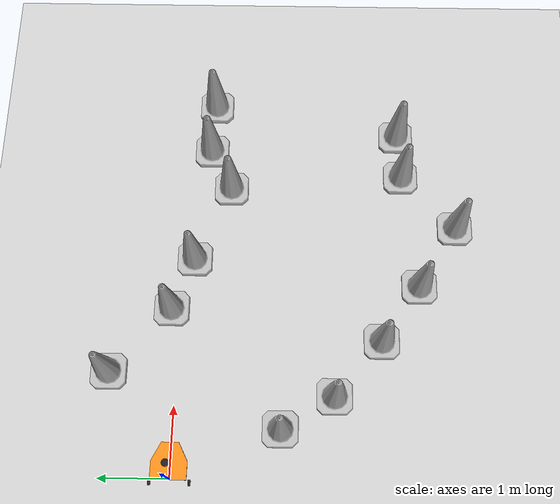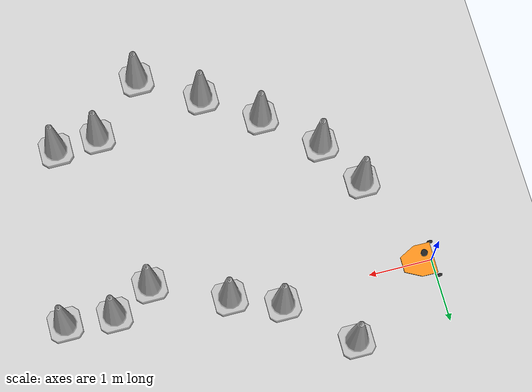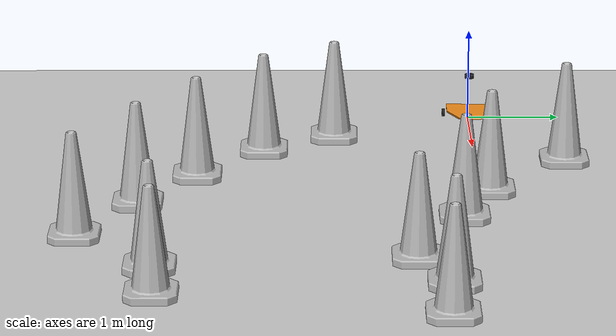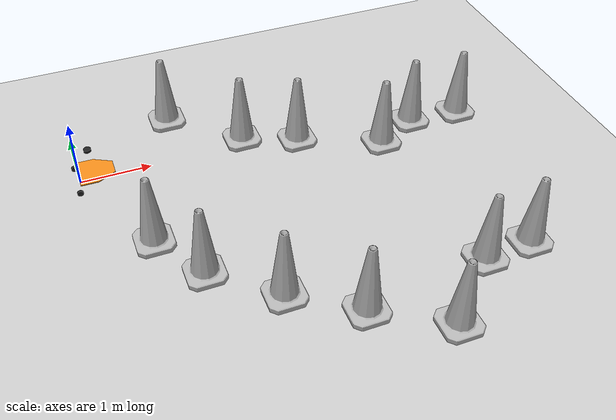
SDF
<sdf version="1.7">
 <world name="default">
  <light name="sun" type="directional">
   <pose>0 0 10 0 -0 0</pose>
   <diffuse>0.8 0.8 0.8 1</diffuse>
   <specular>0.2 0.2 0.2 1</specular>
   <attenuation>
    <range>1000</range>
    <constant>0.9</constant>
    <linear>0.01</linear>
    <quadratic>0.001</quadratic>
   </attenuation>
   <direction>-0.5 0.1 -0.9</direction>
   <spot><inner_angle>0</inner_angle><outer_angle>0</outer_angle><falloff>0</falloff></spot>
  </light>
  <model name="ground_plane">
   <static>1</static>
   <link name="link">
    <collision name="collision">
     <geometry><plane><normal>0 0 1</normal><size>100 100</size></plane></geometry>
     <surface><friction><ode><mu>100</mu><mu2>50</mu2></ode></friction></surface>
    </collision>
    <visual name="visual">
     <cast_shadows>0</cast_shadows>
     <geometry><plane><normal>0 0 1</normal><size>100 100</size></plane></geometry>
     <material>
      <script><uri>file://media/materials/scripts/gazebo.material</uri><name>Gazebo/Grey</name></script>
     </material>
    </visual>
   </link>
  </model>
  <gravity>0 0 -9.8</gravity>
  <magnetic_field>6e-06 2.3e-05 -4.2e-05</magnetic_field>
  <atmosphere type="adiabatic"/>
  <physics type="ode">
   <max_step_size>0.001</max_step_size>
   <real_time_factor>1</real_time_factor>
   <real_time_update_rate>1000</real_time_update_rate>
  </physics>
  <scene><ambient>0.4 0.4 0.4 1</ambient><background>0.7 0.7 0.7 1</background><shadows>1</shadows></scene>
  <audio><device>default</device></audio>
  <spherical_coordinates>
   <surface_model>EARTH_WGS84</surface_model>
   <latitude_deg>0</latitude_deg>
   <longitude_deg>0</longitude_deg>
   <elevation>0</elevation>
   <heading_deg>0</heading_deg>
  </spherical_coordinates>
  <model name="Construction Cone">
   <link name="link">
    <collision name="collision">
     <geometry>
      <mesh><scale>10 10 10</scale><uri>model://construction_cone/meshes/construction_cone.dae</uri></mesh>
     </geometry>
    </collision>
    <visual name="visual">
     <geometry>
      <mesh><scale>10 10 10</scale><uri>model://construction_cone/meshes/construction_cone.dae</uri></mesh>
     </geometry>
    </visual>
    <inertial>
     <inertia><ixx>1</ixx><ixy>0</ixy><ixz>0</ixz><iyy>1</iyy><iyz>0</iyz><izz>1</izz></inertia>
     <mass>1</mass>
    </inertial>
   </link>
   <pose>1.95507 -2.92548 -1e-05 0 -0 0</pose>
  </model>
  <model name="Construction Cone_5">
   <link name="link">
    <collision name="collision">
     <geometry>
      <mesh><scale>10 10 10</scale><uri>model://construction_cone/meshes/construction_cone.dae</uri></mesh>
     </geometry>
    </collision>
    <visual name="visual">
     <geometry>
      <mesh><scale>10 10 10</scale><uri>model://construction_cone/meshes/construction_cone.dae</uri></mesh>
     </geometry>
    </visual>
    <inertial>
     <inertia><ixx>1</ixx><ixy>0</ixy><ixz>0</ixz><iyy>1</iyy><iyz>0</iyz><izz>1</izz></inertia>
     <mass>1</mass>
    </inertial>
   </link>
   <pose>2.78297 -3.49309 -0 0 -0 0</pose>
  </model>
  <model name="Construction Cone_10">
   <link name="link">
    <collision name="collision">
     <geometry>
      <mesh><scale>10 10 10</scale><uri>model://construction_cone/meshes/construction_cone.dae</uri></mesh>
     </geometry>
    </collision>
    <visual name="visual">
     <geometry>
      <mesh><scale>10 10 10</scale><uri>model://construction_cone/meshes/construction_cone.dae</uri></mesh>
     </geometry>
    </visual>
    <inertial>
     <inertia><ixx>1</ixx><ixy>0</ixy><ixz>0</ixz><iyy>1</iyy><iyz>0</iyz><izz>1</izz></inertia>
     <mass>1</mass>
    </inertial>
   </link>
   <pose>4.3092 -0.696821 -0 0 -0 0</pose>
  </model>
  <model name="my_bot">
   <link name="base_footprint">
    <inertial>
     <pose>0.163002 -0 0.11722 0 -0 0</pose>
     <mass>11.4</mass>
     <inertia>
      <ixx>0.150101</ixx>
      <ixy>-1.18496e-17</ixy>
      <ixz>0.00513662</ixz>
      <iyy>0.241825</iyy>
      <iyz>-3.17377e-18</iyz>
      <izz>0.215262</izz>
     </inertia>
    </inertial>
    <collision name="base_footprint_fixed_joint_lump__base_link_collision">
     <pose>0.1451 0 0.189 0 -0 0</pose>
     <geometry><box><size>0.45 0.35 0.2</size></box></geometry>
    </collision>
    <collision name="base_footprint_fixed_joint_lump__caster_wheel_1_collision_1">
     <pose>0.37519 0 0.059 0 -0 0</pose>
     <geometry><box><size>0.03 0.03 0.02</size></box></geometry>
    </collision>
    <collision name="base_footprint_fixed_joint_lump__caster_wheel_2_collision_2">
     <pose>0.37519 0 0.026 -1.5708 0 0</pose>
     <geometry><sphere><radius>0.026</radius></sphere></geometry>
     <surface>
      <contact><ode><kp>1e+07</kp><kd>1</kd><min_depth>0.001</min_depth></ode></contact>
      <friction><ode><mu>0</mu><mu2>0</mu2></ode></friction>
     </surface>
    </collision>
    <collision name="base_footprint_fixed_joint_lump__laser_frame_collision_3">
     <pose>0.218095 0 0.539 0 -0 0</pose>
     <geometry><cylinder><length>0.04</length><radius>0.05</radius></cylinder></geometry>
    </collision>
    <visual name="base_footprint_fixed_joint_lump__base_link_visual">
     <pose>0.1451 0 0.089 0 -0 0</pose>
     <geometry><mesh><scale>1 1 1</scale><uri>model://amr_003/meshes/base_link.STL</uri></mesh></geometry>
     <material>
      <script><name>Gazebo/Orange</name><uri>file://media/materials/scripts/gazebo.material</uri></script>
     </material>
    </visual>
    <visual name="base_footprint_fixed_joint_lump__caster_wheel_1_visual_1">
     <pose>0.37519 0 0.074 0 -0 0</pose>
     <geometry><mesh><scale>1 1 1</scale><uri>model://amr_003/meshes/caster_wheel_1.STL</uri></mesh></geometry>
     <material>
      <script><name>Gazebo/Grey</name><uri>file://media/materials/scripts/gazebo.material</uri></script>
     </material>
    </visual>
    <visual name="base_footprint_fixed_joint_lump__caster_wheel_2_visual_2">
     <pose>0.37519 0 0.026 -1.5708 0 0</pose>
     <geometry><mesh><scale>1 1 1</scale><uri>model://amr_003/meshes/caster_wheel_2.STL</uri></mesh></geometry>
     <material>
      <script><name>Gazebo/Black</name><uri>file://media/materials/scripts/gazebo.material</uri></script>
     </material>
    </visual>
    <visual name="base_footprint_fixed_joint_lump__laser_frame_visual_3">
     <pose>0.218095 0 0.539 0 -0 0</pose>
     <geometry><cylinder><length>0.04</length><radius>0.05</radius></cylinder></geometry>
     <material>
      <script><name>Gazebo/Black</name><uri>file://media/materials/scripts/gazebo.material</uri></script>
     </material>
    </visual>
    <sensor name="laser" type="ray">
     <visualize>0</visualize>
     <update_rate>10</update_rate>
     <ray>
      <scan>
       <horizontal>
        <samples>360</samples>
        <min_angle>-3.14</min_angle>
        <max_angle>3.14</max_angle>
        <resolution>1</resolution>
       </horizontal>
       <vertical><samples>1</samples><min_angle>0</min_angle><max_angle>0</max_angle></vertical>
      </scan>
      <range><min>0.3</min><max>12</max></range>
     </ray>
     <plugin name="laser_controller" filename="libgazebo_ros_ray_sensor.so">
      <ros><argument>~/out:=scan</argument></ros>
      <output_type>sensor_msgs/LaserScan</output_type>
      <frame_name>laser_frame</frame_name>
     </plugin>
     <pose>0.218095 0 0.539 0 -0 0</pose>
    </sensor>
   </link>
   <joint name="left_wheel_joint" type="revolute">
    <pose relative_to="base_footprint">0 0.2825 0.0445 -1.5708 0 0</pose>
    <parent>base_footprint</parent>
    <child>left_wheel</child>
    <axis>
     <xyz>0 0 1</xyz>
     <limit><lower>-1e+16</lower><upper>1e+16</upper></limit>
     <dynamics>
      <damping>0.1</damping>
      <friction>0.1</friction>
      <spring_reference>0</spring_reference>
      <spring_stiffness>0</spring_stiffness>
     </dynamics>
    </axis>
   </joint>
   <link name="left_wheel">
    <pose relative_to="left_wheel_joint">0 0 0 0 -0 0</pose>
    <inertial>
     <pose>0 0 -0.01 0 -0 0</pose>
     <mass>0.1415</mass>
     <inertia>
      <ixx>7.859e-05</ixx>
      <ixy>0</ixy>
      <ixz>0</ixz>
      <iyy>7.859e-05</iyy>
      <iyz>0</iyz>
      <izz>0.00014084</izz>
     </inertia>
    </inertial>
    <collision name="left_wheel_collision">
     <geometry><sphere><radius>0.0445</radius></sphere></geometry>
     <surface><friction><ode><mu>2</mu><mu2>2</mu2></ode></friction></surface>
    </collision>
    <visual name="left_wheel_visual">
     <geometry><mesh><scale>1 1 1</scale><uri>model://amr_003/meshes/left_wheel.STL</uri></mesh></geometry>
     <material>
      <script><name>Gazebo/FlatBlack</name><uri>file://media/materials/scripts/gazebo.material</uri></script>
     </material>
    </visual>
   </link>
   <joint name="right_wheel_joint" type="revolute">
    <pose relative_to="base_footprint">0 -0.2825 0.0445 -1.5708 0 0</pose>
    <parent>base_footprint</parent>
    <child>right_wheel</child>
    <axis>
     <xyz>0 0 1</xyz>
     <limit><lower>-1e+16</lower><upper>1e+16</upper></limit>
     <dynamics>
      <damping>0.1</damping>
      <friction>0.1</friction>
      <spring_reference>0</spring_reference>
      <spring_stiffness>0</spring_stiffness>
     </dynamics>
    </axis>
   </joint>
   <link name="right_wheel">
    <pose relative_to="right_wheel_joint">0 0 0 0 -0 0</pose>
    <inertial>
     <pose>-0 -0 0.01 0 -0 0</pose>
     <mass>0.1415</mass>
     <inertia>
      <ixx>7.859e-05</ixx>
      <ixy>0</ixy>
      <ixz>0</ixz>
      <iyy>7.859e-05</iyy>
      <iyz>0</iyz>
      <izz>0.00014084</izz>
     </inertia>
    </inertial>
    <collision name="right_wheel_collision">
     <geometry><sphere><radius>0.0445</radius></sphere></geometry>
     <surface><friction><ode><mu>2</mu><mu2>2</mu2></ode></friction></surface>
    </collision>
    <visual name="right_wheel_visual">
     <geometry><mesh><scale>1 1 1</scale><uri>model://amr_003/meshes/right_wheel.STL</uri></mesh></geometry>
     <material>
      <script><name>Gazebo/FlatBlack</name><uri>file://media/materials/scripts/gazebo.material</uri></script>
     </material>
    </visual>
   </link>
   <static>0</static>
   <plugin name="gazebo_ros2_control" filename="libgazebo_ros2_control.so">
    <parameters>/home/tien/dev_ws/install/amr_003/share/amr_003/config/my_controllers.yaml</parameters>
    <parameters>/home/tien/dev_ws/install/amr_003/share/amr_003/config/gaz_ros2_ctl_use_sim.yaml</parameters>
   </plugin>
   <pose>-0.0425 0.002604 -1e-06 2e-06 1.1e-05 -0.009611</pose>
  </model>
  <model name="Construction Cone_12">
   <link name="link">
    <collision name="collision">
     <geometry>
      <mesh><scale>10 10 10</scale><uri>model://construction_cone/meshes/construction_cone.dae</uri></mesh>
     </geometry>
    </collision>
    <visual name="visual">
     <geometry>
      <mesh><scale>10 10 10</scale><uri>model://construction_cone/meshes/construction_cone.dae</uri></mesh>
     </geometry>
    </visual>
    <inertial>
     <inertia><ixx>1</ixx><ixy>0</ixy><ixz>0</ixz><iyy>1</iyy><iyz>0</iyz><izz>1</izz></inertia>
     <mass>1</mass>
    </inertial>
   </link>
   <pose>1.15605 -2.24602 -1e-06 2e-06 2e-06 0</pose>
  </model>
  <model name="Construction Cone_13">
   <link name="link">
    <collision name="collision">
     <geometry>
      <mesh><scale>10 10 10</scale><uri>model://construction_cone/meshes/construction_cone.dae</uri></mesh>
     </geometry>
    </collision>
    <visual name="visual">
     <geometry>
      <mesh><scale>10 10 10</scale><uri>model://construction_cone/meshes/construction_cone.dae</uri></mesh>
     </geometry>
    </visual>
    <inertial>
     <inertia><ixx>1</ixx><ixy>0</ixy><ixz>0</ixz><iyy>1</iyy><iyz>0</iyz><izz>1</izz></inertia>
     <mass>1</mass>
    </inertial>
   </link>
   <pose>0.694831 -1.49342 -0 0 -0 0</pose>
  </model>
  <model name="Construction Cone_15">
   <link name="link">
    <collision name="collision">
     <geometry>
      <mesh><scale>10 10 10</scale><uri>model://construction_cone/meshes/construction_cone.dae</uri></mesh>
     </geometry>
    </collision>
    <visual name="visual">
     <geometry>
      <mesh><scale>10 10 10</scale><uri>model://construction_cone/meshes/construction_cone.dae</uri></mesh>
     </geometry>
    </visual>
    <inertial>
     <inertia><ixx>1</ixx><ixy>0</ixy><ixz>0</ixz><iyy>1</iyy><iyz>0</iyz><izz>1</izz></inertia>
     <mass>1</mass>
    </inertial>
   </link>
   <pose>2.40574 0.10581 -1e-06 1e-06 -2e-06 -0</pose>
  </model>
  <model name="Construction Cone_16">
   <link name="link">
    <collision name="collision">
     <geometry>
      <mesh><scale>10 10 10</scale><uri>model://construction_cone/meshes/construction_cone.dae</uri></mesh>
     </geometry>
    </collision>
    <visual name="visual">
     <geometry>
      <mesh><scale>10 10 10</scale><uri>model://construction_cone/meshes/construction_cone.dae</uri></mesh>
     </geometry>
    </visual>
    <inertial>
     <inertia><ixx>1</ixx><ixy>0</ixy><ixz>0</ixz><iyy>1</iyy><iyz>0</iyz><izz>1</izz></inertia>
     <mass>1</mass>
    </inertial>
   </link>
   <pose>3.16983 -0.194199 -0 0 -0 0</pose>
  </model>
  <model name="Construction Cone_17">
   <link name="link">
    <collision name="collision">
     <geometry>
      <mesh><scale>10 10 10</scale><uri>model://construction_cone/meshes/construction_cone.dae</uri></mesh>
     </geometry>
    </collision>
    <visual name="visual">
     <geometry>
      <mesh><scale>10 10 10</scale><uri>model://construction_cone/meshes/construction_cone.dae</uri></mesh>
     </geometry>
    </visual>
    <inertial>
     <inertia><ixx>1</ixx><ixy>0</ixy><ixz>0</ixz><iyy>1</iyy><iyz>0</iyz><izz>1</izz></inertia>
     <mass>1</mass>
    </inertial>
   </link>
   <pose>3.70497 -4.05427 -0 0 -1e-06 0</pose>
  </model>
  <model name="Construction Cone_18">
   <link name="link">
    <collision name="collision">
     <geometry>
      <mesh><scale>10 10 10</scale><uri>model://construction_cone/meshes/construction_cone.dae</uri></mesh>
     </geometry>
    </collision>
    <visual name="visual">
     <geometry>
      <mesh><scale>10 10 10</scale><uri>model://construction_cone/meshes/construction_cone.dae</uri></mesh>
     </geometry>
    </visual>
    <inertial>
     <inertia><ixx>1</ixx><ixy>0</ixy><ixz>0</ixz><iyy>1</iyy><iyz>0</iyz><izz>1</izz></inertia>
     <mass>1</mass>
    </inertial>
   </link>
   <pose>4.52932 -3.26554 -0 0 -1e-06 0</pose>
  </model>
  <model name="Construction Cone_19">
   <link name="link">
    <collision name="collision">
     <geometry>
      <mesh><scale>10 10 10</scale><uri>model://construction_cone/meshes/construction_cone.dae</uri></mesh>
     </geometry>
    </collision>
    <visual name="visual">
     <geometry>
      <mesh><scale>10 10 10</scale><uri>model://construction_cone/meshes/construction_cone.dae</uri></mesh>
     </geometry>
    </visual>
    <inertial>
     <inertia><ixx>1</ixx><ixy>0</ixy><ixz>0</ixz><iyy>1</iyy><iyz>0</iyz><izz>1</izz></inertia>
     <mass>1</mass>
    </inertial>
   </link>
   <pose>5.21734 -3.2096 -1e-05 0 -0 0</pose>
  </model>
  <model name="Construction Cone_1">
   <link name="link">
    <collision name="collision">
     <geometry>
      <mesh><scale>10 10 10</scale><uri>model://construction_cone/meshes/construction_cone.dae</uri></mesh>
     </geometry>
    </collision>
    <visual name="visual">
     <geometry>
      <mesh><scale>10 10 10</scale><uri>model://construction_cone/meshes/construction_cone.dae</uri></mesh>
     </geometry>
    </visual>
    <inertial>
     <inertia><ixx>1</ixx><ixy>0</ixy><ixz>0</ixz><iyy>1</iyy><iyz>0</iyz><izz>1</izz></inertia>
     <mass>1</mass>
    </inertial>
   </link>
   <pose>1.47286 0.946468 -0 0 -0 0</pose>
  </model>
  <model name="Construction Cone_2">
   <link name="link">
    <collision name="collision">
     <geometry>
      <mesh><scale>10 10 10</scale><uri>model://construction_cone/meshes/construction_cone.dae</uri></mesh>
     </geometry>
    </collision>
    <visual name="visual">
     <geometry>
      <mesh><scale>10 10 10</scale><uri>model://construction_cone/meshes/construction_cone.dae</uri></mesh>
     </geometry>
    </visual>
    <inertial>
     <inertia><ixx>1</ixx><ixy>0</ixy><ixz>0</ixz><iyy>1</iyy><iyz>0</iyz><izz>1</izz></inertia>
     <mass>1</mass>
    </inertial>
   </link>
   <pose>4.9393 -0.376233 -0 0 -0 0</pose>
  </model>
  <model name="Construction Cone_3">
   <link name="link">
    <collision name="collision">
     <geometry>
      <mesh><scale>10 10 10</scale><uri>model://construction_cone/meshes/construction_cone.dae</uri></mesh>
     </geometry>
    </collision>
    <visual name="visual">
     <geometry>
      <mesh><scale>10 10 10</scale><uri>model://construction_cone/meshes/construction_cone.dae</uri></mesh>
     </geometry>
    </visual>
    <inertial>
     <inertia><ixx>1</ixx><ixy>0</ixy><ixz>0</ixz><iyy>1</iyy><iyz>0</iyz><izz>1</izz></inertia>
     <mass>1</mass>
    </inertial>
   </link>
   <pose>5.70277 -0.423728 -0 0 -1e-06 0</pose>
  </model>
 </world>
</sdf>
